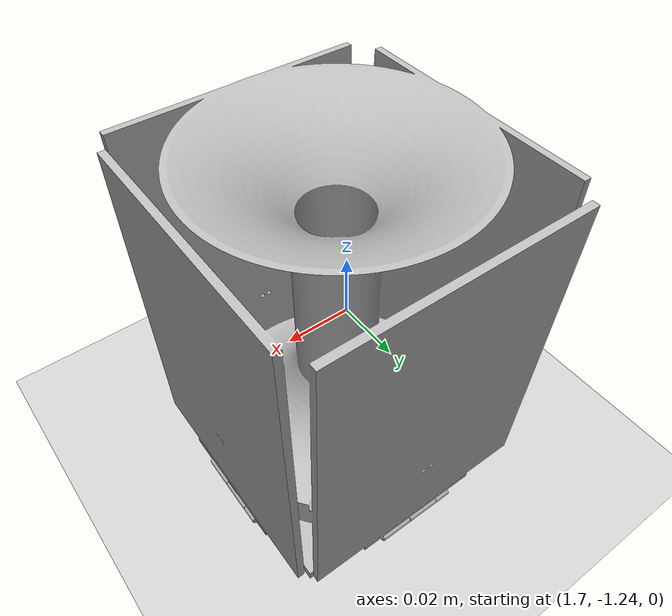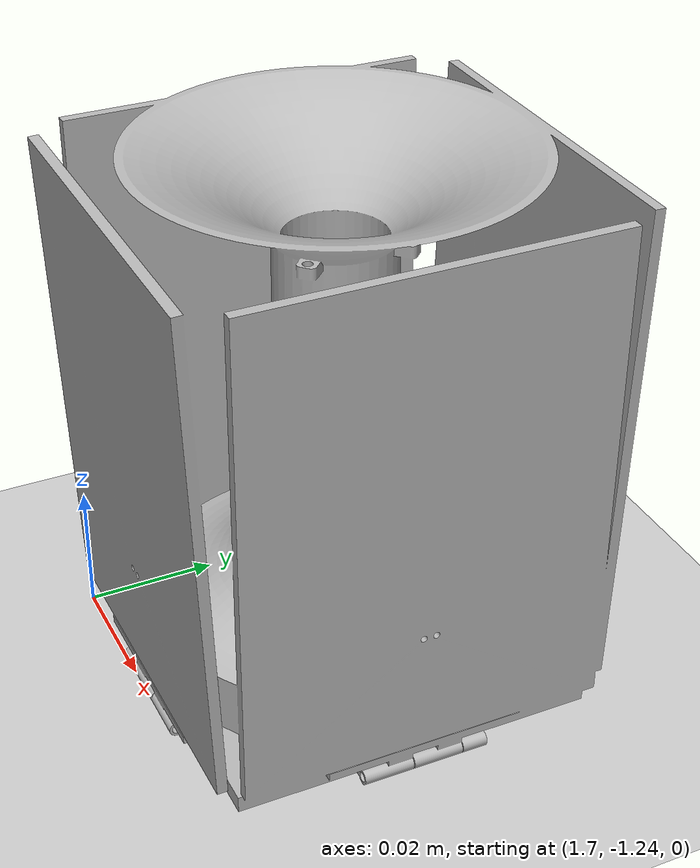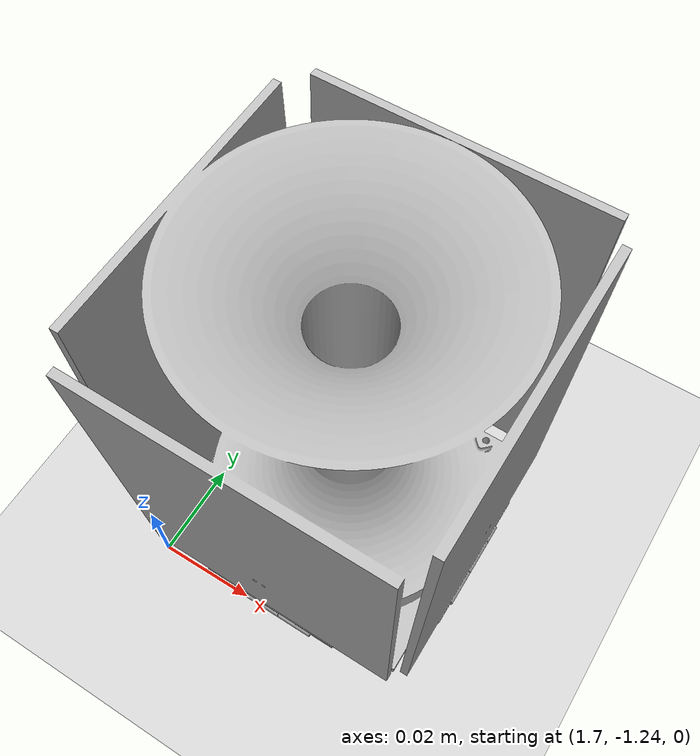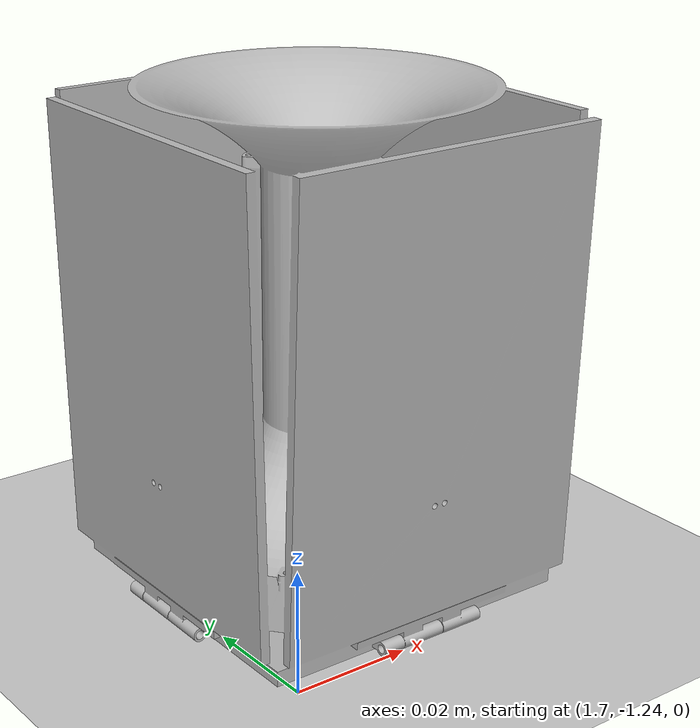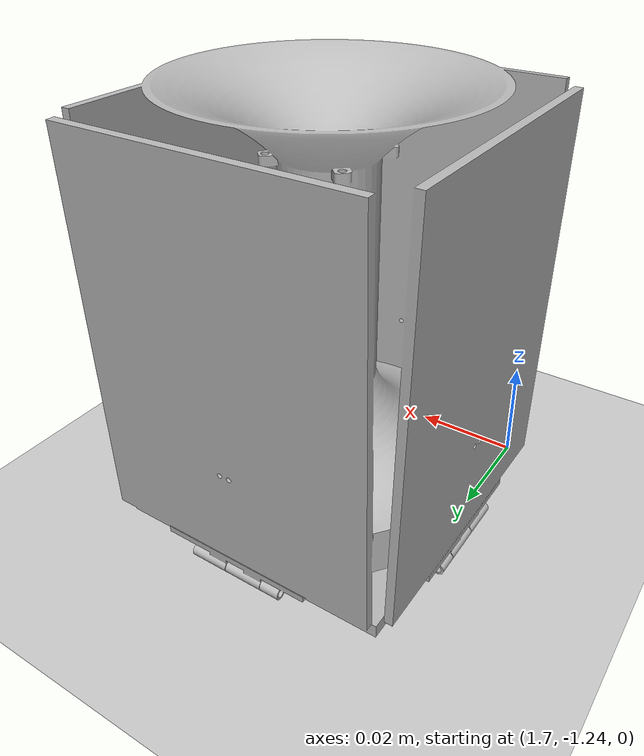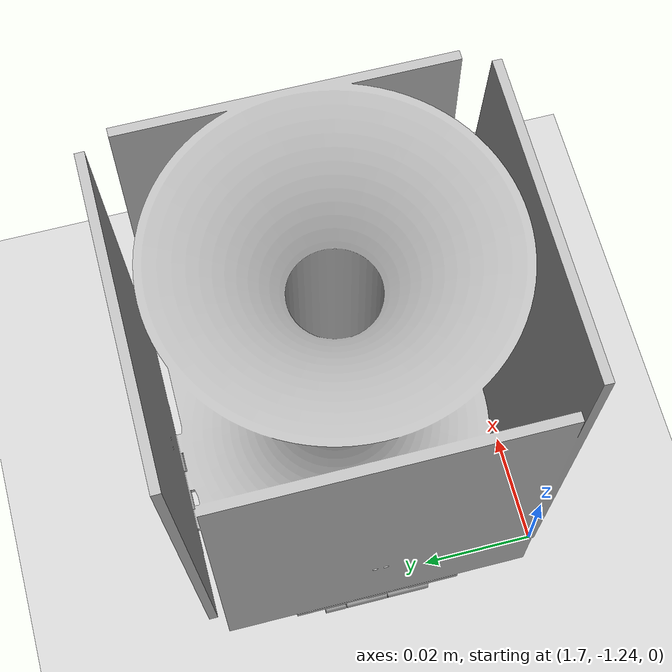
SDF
<sdf version="1.6">
 <world name="default">
  <plugin name="ros_link_attacher_plugin" filename="libgazebo_ros_link_attacher.so"/>
  <light name="sun" type="directional">
   <pose>0 0 10 0 -0 0</pose>
   <diffuse>0.8 0.8 0.8 1</diffuse>
   <specular>0.2 0.2 0.2 1</specular>
   <attenuation>
    <range>1000</range>
    <constant>0.9</constant>
    <linear>0.01</linear>
    <quadratic>0.001</quadratic>
   </attenuation>
   <direction>-0.5 0.1 -0.9</direction>
  </light>
  <model name="ground_plane">
   <static>1</static>
   <link name="link">
    <collision name="collision">
     <geometry><plane><normal>0 0 1</normal><size>100 100</size></plane></geometry>
     <surface>
      <contact><collide_bitmask>65535</collide_bitmask></contact>
      <friction><ode><mu>100</mu><mu2>50</mu2></ode></friction>
     </surface>
    </collision>
    <visual name="visual">
     <cast_shadows>0</cast_shadows>
     <geometry><plane><normal>0 0 1</normal><size>100 100</size></plane></geometry>
     <material>
      <script><uri>file://media/materials/scripts/gazebo.material</uri><name>Gazebo/Grey</name></script>
     </material>
    </visual>
   </link>
  </model>
  <gravity>0 0 -9.8</gravity>
  <magnetic_field>6e-06 2.3e-05 -4.2e-05</magnetic_field>
  <atmosphere type="adiabatic"/>
  <physics name="default_physics" default="0" type="ode">
   <max_step_size>0.001</max_step_size>
   <real_time_factor>1</real_time_factor>
   <real_time_update_rate>1000</real_time_update_rate>
  </physics>
  <scene><ambient>0.4 0.4 0.4 1</ambient><background>0.7 0.7 0.7 1</background><shadows>1</shadows></scene>
  <spherical_coordinates>
   <surface_model>EARTH_WGS84</surface_model>
   <latitude_deg>0</latitude_deg>
   <longitude_deg>0</longitude_deg>
   <elevation>0</elevation>
   <heading_deg>0</heading_deg>
  </spherical_coordinates>
  <model name="sample_probe">
   <link name="base_link">
    <inertial>
     <mass>0.01</mass>
     <inertia><ixx>0.00337</ixx><ixy>0</ixy><ixz>0</ixz><iyy>0.00337</iyy><iyz>0</iyz><izz>0.00185</izz></inertia>
    </inertial>
    <visual name="visual">
     <geometry><mesh><uri>model://sample_probe/meshes/sample_probe.dae</uri></mesh></geometry>
    </visual>
    <collision name="base_link_inertia_collision">
     <max_contacts>1</max_contacts>
     <geometry><mesh><uri>model://sample_probe/meshes/sample_probe.dae</uri></mesh></geometry>
     <surface>
      <friction><ode><mu>1</mu><mu2>1</mu2><fdir1>0 0 0</fdir1><slip1>0</slip1><slip2>0</slip2></ode></friction>
      <bounce><restitution_coefficient>0</restitution_coefficient><threshold>1e+06</threshold></bounce>
      <contact>
       <collide_without_contact>0</collide_without_contact>
       <collide_without_contact_bitmask>1</collide_without_contact_bitmask>
       <collide_bitmask>1</collide_bitmask>
       <ode>
        <soft_cfm>0</soft_cfm>
        <soft_erp>0.2</soft_erp>
        <kp>1e+13</kp>
        <kd>1</kd>
        <max_vel>0.01</max_vel>
        <min_depth>0</min_depth>
       </ode>
       <bullet>
        <split_impulse>1</split_impulse>
        <split_impulse_penetration_threshold>-0.01</split_impulse_penetration_threshold>
        <soft_cfm>0</soft_cfm>
        <soft_erp>0.2</soft_erp>
        <kp>1e+13</kp>
        <kd>1</kd>
       </bullet>
      </contact>
     </surface>
    </collision>
   </link>
   <pose>1.72549 -1.2098 0.041282 1.57046 3.7e-05 -0.00352</pose>
  </model>
 </world>
</sdf>
